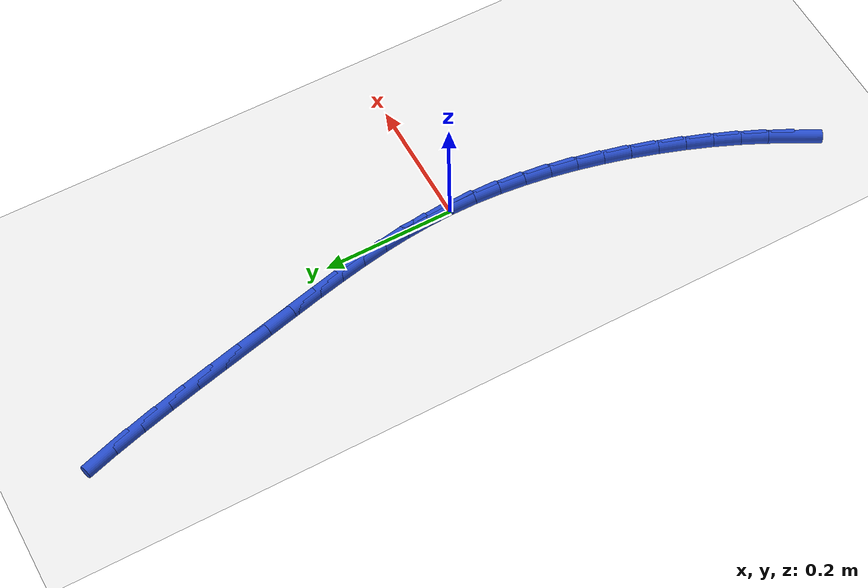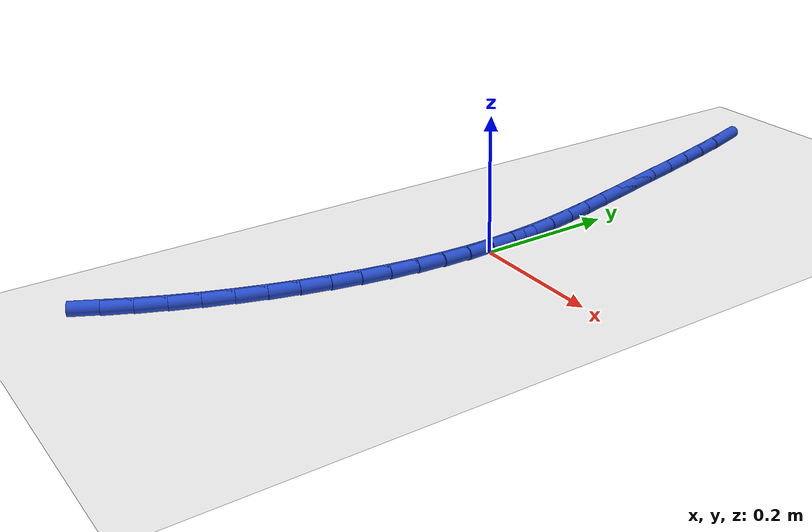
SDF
<sdf version="1.6">
 <world name="default">
  <model name="ground_plane">
   <static>1</static>
   <link name="link">
    <collision name="collision">
     <geometry><plane><normal>0 0 1</normal><size>100 100</size></plane></geometry>
     <surface><friction><ode><mu>100</mu><mu2>50</mu2></ode></friction></surface>
    </collision>
    <visual name="visual">
     <cast_shadows>0</cast_shadows>
     <geometry><plane><normal>0 0 1</normal><size>100 100</size></plane></geometry>
     <material>
      <script><uri>file://media/materials/scripts/gazebo.material</uri><name>Gazebo/WhiteGlow</name></script>
     </material>
    </visual>
   </link>
  </model>
  <model name="line">
   <link name="link_0">
    <pose>1.3877787807814457e-17 -2.0816681711721685e-17 0.01 0 1.57 -1.5244611775396544</pose>
    <collision name="collision">
     <geometry><cylinder><radius>0.01</radius><length>0.08</length></cylinder></geometry>
    </collision>
    <visual name="visual">
     <material>
      <script><name>Gazebo/Blue</name><uri>file://media/materials/scripts/gazebo.material</uri></script>
     </material>
     <geometry><cylinder><radius>0.01</radius><length>0.08</length></cylinder></geometry>
    </visual>
   </link>
   <link name="link_1">
    <pose>-0.0017946024913230137 0.03870318821399723 0.01 0 1.57 -1.475856947605936</pose>
    <collision name="collision">
     <geometry><cylinder><radius>0.01</radius><length>0.08</length></cylinder></geometry>
    </collision>
    <visual name="visual">
     <material>
      <script><name>Gazebo/Blue</name><uri>file://media/materials/scripts/gazebo.material</uri></script>
     </material>
     <geometry><cylinder><radius>0.01</radius><length>0.08</length></cylinder></geometry>
    </visual>
   </link>
   <link name="link_2">
    <pose>-0.005453563407093402 0.07712729636301198 0.01 0 1.57 -1.433615060833195</pose>
    <collision name="collision">
     <geometry><cylinder><radius>0.01</radius><length>0.08</length></cylinder></geometry>
    </collision>
    <visual name="visual">
     <material>
      <script><name>Gazebo/Blue</name><uri>file://media/materials/scripts/gazebo.material</uri></script>
     </material>
     <geometry><cylinder><radius>0.01</radius><length>0.08</length></cylinder></geometry>
    </visual>
   </link>
   <link name="link_3">
    <pose>-0.010755834224982639 0.11553610068322581 0.01 0 1.57 -1.3985671574226302</pose>
    <collision name="collision">
     <geometry><cylinder><radius>0.01</radius><length>0.08</length></cylinder></geometry>
    </collision>
    <visual name="visual">
     <material>
      <script><name>Gazebo/Blue</name><uri>file://media/materials/scripts/gazebo.material</uri></script>
     </material>
     <geometry><cylinder><radius>0.01</radius><length>0.08</length></cylinder></geometry>
    </visual>
   </link>
   <link name="link_4">
    <pose>-0.01748036642266225 0.15419337741082034 0.01 0 1.57 -1.371147287391011</pose>
    <collision name="collision">
     <geometry><cylinder><radius>0.01</radius><length>0.08</length></cylinder></geometry>
    </collision>
    <visual name="visual">
     <material>
      <script><name>Gazebo/Blue</name><uri>file://media/materials/scripts/gazebo.material</uri></script>
     </material>
     <geometry><cylinder><radius>0.01</radius><length>0.08</length></cylinder></geometry>
    </visual>
   </link>
   <link name="link_5">
    <pose>-0.025406111477803712 0.1933629027819771 0.01 0 1.57 -1.3514327908160615</pose>
    <collision name="collision">
     <geometry><cylinder><radius>0.01</radius><length>0.08</length></cylinder></geometry>
    </collision>
    <visual name="visual">
     <material>
      <script><name>Gazebo/Blue</name><uri>file://media/materials/scripts/gazebo.material</uri></script>
     </material>
     <geometry><cylinder><radius>0.01</radius><length>0.08</length></cylinder></geometry>
    </visual>
   </link>
   <link name="link_6">
    <pose>-0.034312020868078504 0.23330845303287756 0.01 0 1.57 -1.3392106671136177</pose>
    <collision name="collision">
     <geometry><cylinder><radius>0.01</radius><length>0.08</length></cylinder></geometry>
    </collision>
    <visual name="visual">
     <material>
      <script><name>Gazebo/Blue</name><uri>file://media/materials/scripts/gazebo.material</uri></script>
     </material>
     <geometry><cylinder><radius>0.01</radius><length>0.08</length></cylinder></geometry>
    </visual>
   </link>
   <link name="link_7">
    <pose>-0.04397704607115816 0.2742938043997033 0.01 0 1.57 -1.3340499072407581</pose>
    <collision name="collision">
     <geometry><cylinder><radius>0.01</radius><length>0.08</length></cylinder></geometry>
    </collision>
    <visual name="visual">
     <material>
      <script><name>Gazebo/Blue</name><uri>file://media/materials/scripts/gazebo.material</uri></script>
     </material>
     <geometry><cylinder><radius>0.01</radius><length>0.08</length></cylinder></geometry>
    </visual>
   </link>
   <link name="link_8">
    <pose>-0.054180138564714174 0.31658273311863605 0.01 0 1.57 -1.3352256575642685</pose>
    <collision name="collision">
     <geometry><cylinder><radius>0.01</radius><length>0.08</length></cylinder></geometry>
    </collision>
    <visual name="visual">
     <material>
      <script><name>Gazebo/Blue</name><uri>file://media/materials/scripts/gazebo.material</uri></script>
     </material>
     <geometry><cylinder><radius>0.01</radius><length>0.08</length></cylinder></geometry>
    </visual>
   </link>
   <link name="link_9">
    <pose>-0.06470471937124396 0.3604301895524924 0.01 0 1.57 -1.3372267925610564</pose>
    <collision name="collision">
     <geometry><cylinder><radius>0.01</radius><length>0.08</length></cylinder></geometry>
    </collision>
    <visual name="visual">
     <material>
      <script><name>Gazebo/Blue</name><uri>file://media/materials/scripts/gazebo.material</uri></script>
     </material>
     <geometry><cylinder><radius>0.01</radius><length>0.08</length></cylinder></geometry>
    </visual>
   </link>
   <link name="link_10">
    <pose>-0.07549326747762965 0.4057770371702371 0.01 0 1.57 -1.334056104778429</pose>
    <collision name="collision">
     <geometry><cylinder><radius>0.01</radius><length>0.08</length></cylinder></geometry>
    </collision>
    <visual name="visual">
     <material>
      <script><name>Gazebo/Blue</name><uri>file://media/materials/scripts/gazebo.material</uri></script>
     </material>
     <geometry><cylinder><radius>0.01</radius><length>0.08</length></cylinder></geometry>
    </visual>
   </link>
   <link name="link_11">
    <pose>-0.08668676271634951 0.4521721658967152 0.01 0 1.57 -1.325617531100941</pose>
    <collision name="collision">
     <geometry><cylinder><radius>0.01</radius><length>0.08</length></cylinder></geometry>
    </collision>
    <visual name="visual">
     <material>
      <script><name>Gazebo/Blue</name><uri>file://media/materials/scripts/gazebo.material</uri></script>
     </material>
     <geometry><cylinder><radius>0.01</radius><length>0.08</length></cylinder></geometry>
    </visual>
   </link>
   <link name="link_12">
    <pose>-0.09843866459206883 0.49913982243007937 0.01 0 1.57 -1.3119155089145758</pose>
    <collision name="collision">
     <geometry><cylinder><radius>0.01</radius><length>0.08</length></cylinder></geometry>
    </collision>
    <visual name="visual">
     <material>
      <script><name>Gazebo/Blue</name><uri>file://media/materials/scripts/gazebo.material</uri></script>
     </material>
     <geometry><cylinder><radius>0.01</radius><length>0.08</length></cylinder></geometry>
    </visual>
   </link>
   <link name="link_13">
    <pose>-0.11090243260945296 0.5462042534684828 0.01 0 1.57 -1.2926869284423528</pose>
    <collision name="collision">
     <geometry><cylinder><radius>0.01</radius><length>0.08</length></cylinder></geometry>
    </collision>
    <visual name="visual">
     <material>
      <script><name>Gazebo/Blue</name><uri>file://media/materials/scripts/gazebo.material</uri></script>
     </material>
     <geometry><cylinder><radius>0.01</radius><length>0.08</length></cylinder></geometry>
    </visual>
   </link>
   <link name="link_14">
    <pose>-0.12423152627316712 0.5928897057100778 0.01 0 1.57 -1.2673991050727702</pose>
    <collision name="collision">
     <geometry><cylinder><radius>0.01</radius><length>0.08</length></cylinder></geometry>
    </collision>
    <visual name="visual">
     <material>
      <script><name>Gazebo/Blue</name><uri>file://media/materials/scripts/gazebo.material</uri></script>
     </material>
     <geometry><cylinder><radius>0.01</radius><length>0.08</length></cylinder></geometry>
    </visual>
   </link>
   <link name="link_167">
    <pose>-0.1345316132020893 -0.5085264604850236 0.01 0 1.57 1.0781005724037198</pose>
    <collision name="collision">
     <geometry><cylinder><radius>0.01</radius><length>0.08</length></cylinder></geometry>
    </collision>
    <visual name="visual">
     <material>
      <script><name>Gazebo/Blue</name><uri>file://media/materials/scripts/gazebo.material</uri></script>
     </material>
     <geometry><cylinder><radius>0.01</radius><length>0.08</length></cylinder></geometry>
    </visual>
   </link>
   <link name="link_168">
    <pose>-0.11515885336438095 -0.47244087066046464 0.01 0 1.57 1.1242555870700712</pose>
    <collision name="collision">
     <geometry><cylinder><radius>0.01</radius><length>0.08</length></cylinder></geometry>
    </collision>
    <visual name="visual">
     <material>
      <script><name>Gazebo/Blue</name><uri>file://media/materials/scripts/gazebo.material</uri></script>
     </material>
     <geometry><cylinder><radius>0.01</radius><length>0.08</length></cylinder></geometry>
    </visual>
   </link>
   <link name="link_169">
    <pose>-0.0973511358325003 -0.43524814525260885 0.01 0 1.57 1.1660956135828657</pose>
    <collision name="collision">
     <geometry><cylinder><radius>0.01</radius><length>0.08</length></cylinder></geometry>
    </collision>
    <visual name="visual">
     <material>
      <script><name>Gazebo/Blue</name><uri>file://media/materials/scripts/gazebo.material</uri></script>
     </material>
     <geometry><cylinder><radius>0.01</radius><length>0.08</length></cylinder></geometry>
    </visual>
   </link>
   <link name="link_170">
    <pose>-0.08102801109444792 -0.39714074559206497 0.01 0 1.57 1.2039699402806556</pose>
    <collision name="collision">
     <geometry><cylinder><radius>0.01</radius><length>0.08</length></cylinder></geometry>
    </collision>
    <visual name="visual">
     <material>
      <script><name>Gazebo/Blue</name><uri>file://media/materials/scripts/gazebo.material</uri></script>
     </material>
     <geometry><cylinder><radius>0.01</radius><length>0.08</length></cylinder></geometry>
    </visual>
   </link>
   <link name="link_171">
    <pose>-0.06610902963822535 -0.3583111330094446 0.01 0 1.57 1.2383635577513266</pose>
    <collision name="collision">
     <geometry><cylinder><radius>0.01</radius><length>0.08</length></cylinder></geometry>
    </collision>
    <visual name="visual">
     <material>
      <script><name>Gazebo/Blue</name><uri>file://media/materials/scripts/gazebo.material</uri></script>
     </material>
     <geometry><cylinder><radius>0.01</radius><length>0.08</length></cylinder></geometry>
    </visual>
   </link>
   <link name="link_172">
    <pose>-0.052519509126387184 -0.31894920872540433 0.01 0 1.57 1.2719811226224518</pose>
    <collision name="collision">
     <geometry><cylinder><radius>0.01</radius><length>0.08</length></cylinder></geometry>
    </collision>
    <visual name="visual">
     <material>
      <script><name>Gazebo/Blue</name><uri>file://media/materials/scripts/gazebo.material</uri></script>
     </material>
     <geometry><cylinder><radius>0.01</radius><length>0.08</length></cylinder></geometry>
    </visual>
   </link>
   <link name="link_173">
    <pose>-0.04027649952090604 -0.279204153019961 0.01 0 1.57 1.307019218043318</pose>
    <collision name="collision">
     <geometry><cylinder><radius>0.01</radius><length>0.08</length></cylinder></geometry>
    </collision>
    <visual name="visual">
     <material>
      <script><name>Gazebo/Blue</name><uri>file://media/materials/scripts/gazebo.material</uri></script>
     </material>
     <geometry><cylinder><radius>0.01</radius><length>0.08</length></cylinder></geometry>
    </visual>
   </link>
   <link name="link_174">
    <pose>-0.02947055552258766 -0.23919251663995927 0.01 0 1.57 1.3438090826443698</pose>
    <collision name="collision">
     <geometry><cylinder><radius>0.01</radius><length>0.08</length></cylinder></geometry>
    </collision>
    <visual name="visual">
     <material>
      <script><name>Gazebo/Blue</name><uri>file://media/materials/scripts/gazebo.material</uri></script>
     </material>
     <geometry><cylinder><radius>0.01</radius><length>0.08</length></cylinder></geometry>
    </visual>
   </link>
   <link name="link_175">
    <pose>-0.020194297322805324 -0.19902993343907363 0.01 0 1.57 1.3826417969875693</pose>
    <collision name="collision">
     <geometry><cylinder><radius>0.01</radius><length>0.08</length></cylinder></geometry>
    </collision>
    <visual name="visual">
     <material>
      <script><name>Gazebo/Blue</name><uri>file://media/materials/scripts/gazebo.material</uri></script>
     </material>
     <geometry><cylinder><radius>0.01</radius><length>0.08</length></cylinder></geometry>
    </visual>
   </link>
   <link name="link_176">
    <pose>-0.01254034511293222 -0.15883203727097808 0.01 0 1.57 1.4238233062398438</pose>
    <collision name="collision">
     <geometry><cylinder><radius>0.01</radius><length>0.08</length></cylinder></geometry>
    </collision>
    <visual name="visual">
     <material>
      <script><name>Gazebo/Blue</name><uri>file://media/materials/scripts/gazebo.material</uri></script>
     </material>
     <geometry><cylinder><radius>0.01</radius><length>0.08</length></cylinder></geometry>
    </visual>
   </link>
   <link name="link_177">
    <pose>-0.006601319084341936 -0.11871446198934879 0.01 0 1.57 1.467673655527615</pose>
    <collision name="collision">
     <geometry><cylinder><radius>0.01</radius><length>0.08</length></cylinder></geometry>
    </collision>
    <visual name="visual">
     <material>
      <script><name>Gazebo/Blue</name><uri>file://media/materials/scripts/gazebo.material</uri></script>
     </material>
     <geometry><cylinder><radius>0.01</radius><length>0.08</length></cylinder></geometry>
    </visual>
   </link>
   <link name="link_178">
    <pose>-0.0024698394284076025 -0.07879284144785961 0.01 0 1.57 1.514523780170356</pose>
    <collision name="collision">
     <geometry><cylinder><radius>0.01</radius><length>0.08</length></cylinder></geometry>
    </collision>
    <visual name="visual">
     <material>
      <script><name>Gazebo/Blue</name><uri>file://media/materials/scripts/gazebo.material</uri></script>
     </material>
     <geometry><cylinder><radius>0.01</radius><length>0.08</length></cylinder></geometry>
    </visual>
   </link>
   <link name="link_179">
    <pose>-0.00023852633650252135 -0.039182809500185135 0.01 0 1.57 1.5647088768856803</pose>
    <collision name="collision">
     <geometry><cylinder><radius>0.01</radius><length>0.08</length></cylinder></geometry>
    </collision>
    <visual name="visual">
     <material>
      <script><name>Gazebo/Blue</name><uri>file://media/materials/scripts/gazebo.material</uri></script>
     </material>
     <geometry><cylinder><radius>0.01</radius><length>0.08</length></cylinder></geometry>
    </visual>
   </link>
   <link name="link_180">
    <pose>1.0408340855860843e-17 -6.245004513516506e-17 0.01 0 1.57 -1.5230355005110474</pose>
    <collision name="collision">
     <geometry><cylinder><radius>0.01</radius><length>0.08</length></cylinder></geometry>
    </collision>
    <visual name="visual">
     <material>
      <script><name>Gazebo/Blue</name><uri>file://media/materials/scripts/gazebo.material</uri></script>
     </material>
     <geometry><cylinder><radius>0.01</radius><length>0.08</length></cylinder></geometry>
    </visual>
   </link>
   <link name="link_181">
    <pose>-0.0018468806102733028 0.038639953199021 0.01 0 1.57 -1.5230355005110472</pose>
    <collision name="collision">
     <geometry><cylinder><radius>0.01</radius><length>0.08</length></cylinder></geometry>
    </collision>
    <visual name="visual">
     <material>
      <script><name>Gazebo/Blue</name><uri>file://media/materials/scripts/gazebo.material</uri></script>
     </material>
     <geometry><cylinder><radius>0.01</radius><length>0.08</length></cylinder></geometry>
    </visual>
   </link>
  </model>
 </world>
</sdf>
